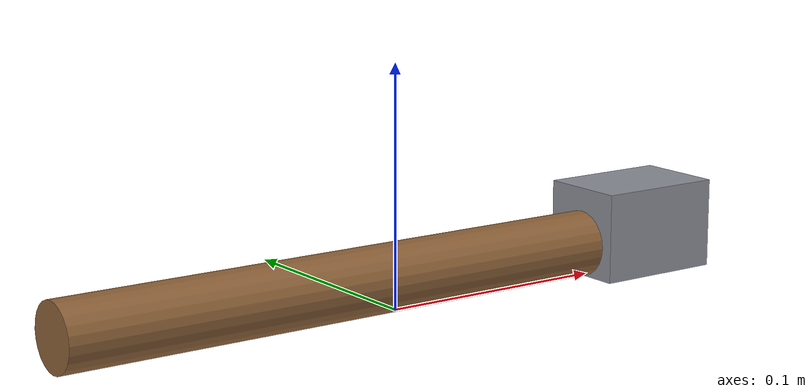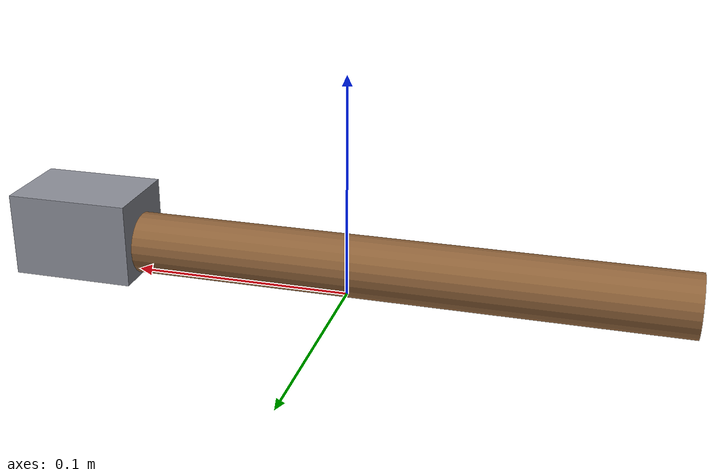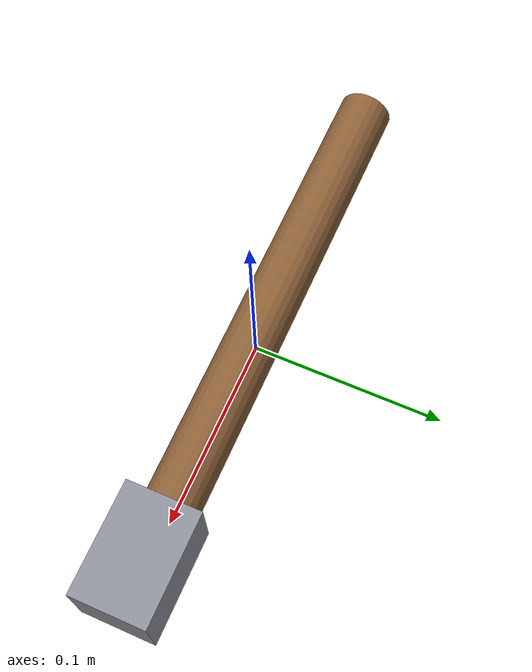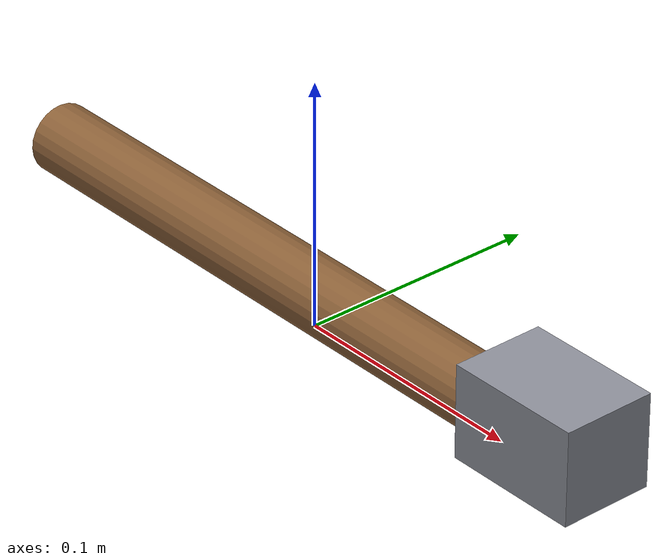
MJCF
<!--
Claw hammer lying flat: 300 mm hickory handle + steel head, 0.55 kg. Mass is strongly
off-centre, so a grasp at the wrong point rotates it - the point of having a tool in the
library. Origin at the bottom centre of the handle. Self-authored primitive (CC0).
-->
<mujoco model="hammer">
  <asset>
    <material name="mat" rgba="0.55 0.38 0.22 1"/>
    <material name="steel_mat" rgba="0.55 0.56 0.60 1"/>
  </asset>
  <worldbody>
    <body name="hammer">
      <freejoint/>
      <geom name="handle" type="cylinder" fromto="-0.15 0 0.014 0.10 0 0.014" size="0.014" mass="0.15"
            material="mat" condim="4" friction="1.0 0.02 0.0005" solimp="0.95 0.99 0.001" solref="0.008 1"/>
      <geom name="head" type="box" size="0.028 0.019 0.019" pos="0.125 0 0.019" mass="0.40"
            material="steel_mat" condim="4" friction="0.7 0.01 0.0002" solimp="0.97 0.995 0.001" solref="0.006 1"/>
    </body>
  </worldbody>
</mujoco>
